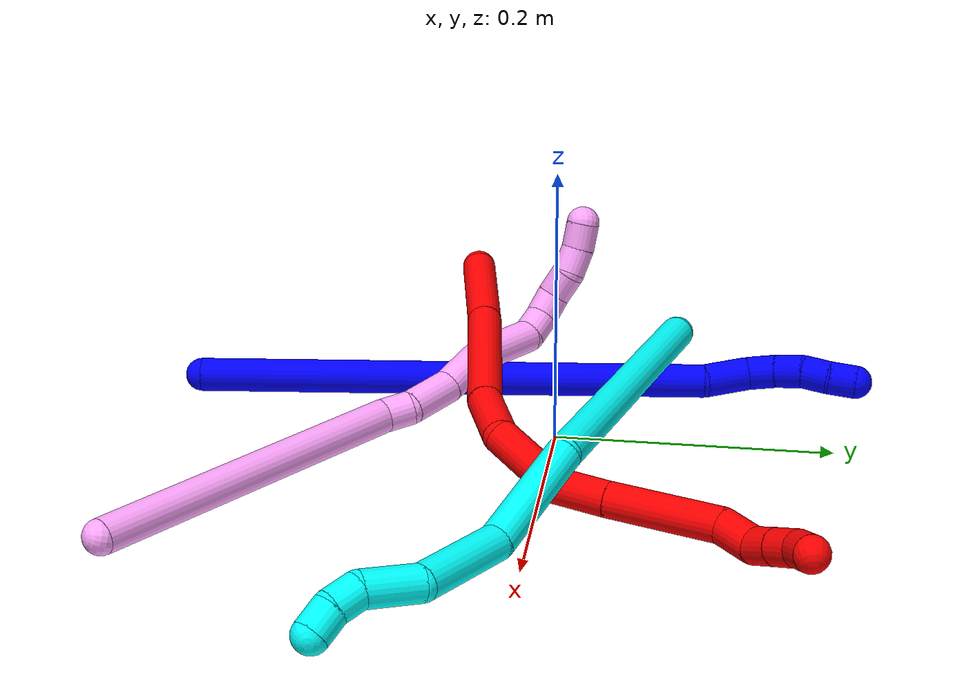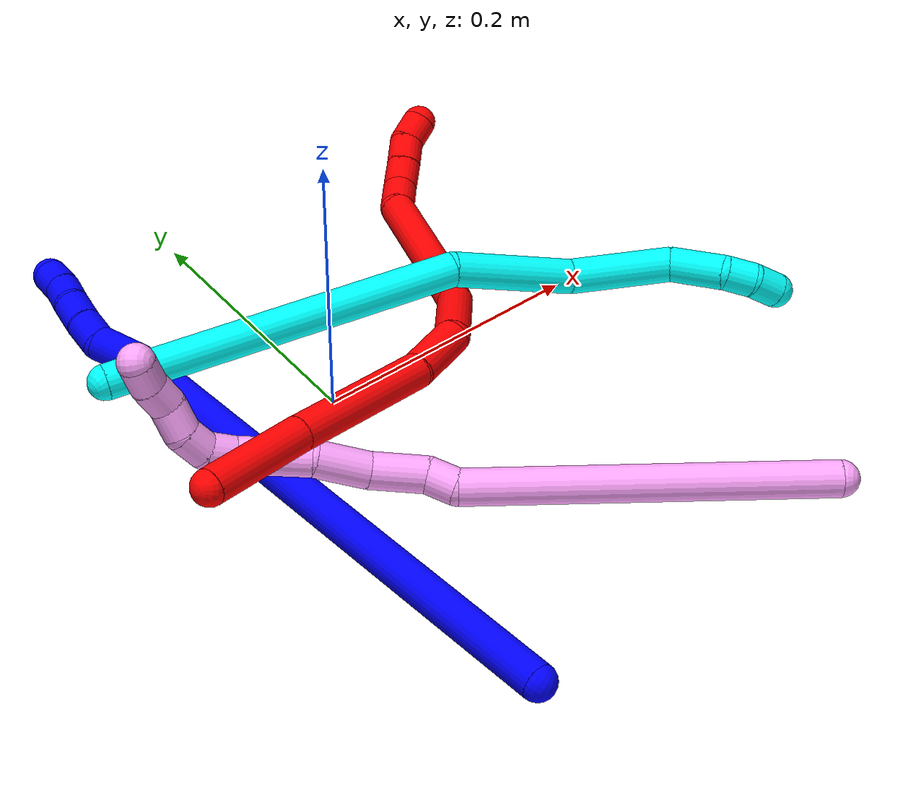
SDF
<sdf version="1.7">
 <world name="default">
  <plugin name="TubeGeneratorPlugin" filename="libtube_generator_plugin.so"/>
  <model name="photoneo_s_sensor">
   <static>1</static>
   <pose>0 0 2 1.57079 1.57079 3.14159</pose>
   <link name="link">
    <inertial><mass>0.1</mass></inertial>
    <sensor name="sensor" type="depth">
     <update_rate>30</update_rate>
     <camera>
      <horizontal_fov>1.22</horizontal_fov>
      <image><width>1920</width><height>1200</height><format>B8G8R8</format></image>
      <clip><near>0.1</near><far>4</far></clip>
      <depth_camera><output>points</output></depth_camera>
     </camera>
     <plugin name="camera_plugin" filename="libgazebo_ros_depth_camera.so">
      <baseline>0.2</baseline>
      <alwaysOn>1</alwaysOn>
      <updateRate>0.0</updateRate>
      <cameraName>camera_ir</cameraName>
      <imageTopicName>/camera/color/image_raw</imageTopicName>
      <cameraInfoTopicName>/camera/color/camera_info</cameraInfoTopicName>
      <depthImageTopicName>/camera/depth/image_raw</depthImageTopicName>
      <depthImageCameraInfoTopicName>/camera/depth/camera_info</depthImageCameraInfoTopicName>
      <pointCloudTopicName>/camera/depth/points</pointCloudTopicName>
      <frameName>fr_optical</frameName>
      <pointCloudCutoff>0.1</pointCloudCutoff>
      <pointCloudCutoffMax>2.0</pointCloudCutoffMax>
      <distortionK1>0</distortionK1>
      <distortionK2>0</distortionK2>
      <distortionK3>0</distortionK3>
      <distortionT1>0</distortionT1>
      <distortionT2>0</distortionT2>
      <CxPrime>0</CxPrime>
      <Cx>0</Cx>
      <Cy>0</Cy>
      <focalLength>0</focalLength>
      <hackBaseline>0</hackBaseline>
     </plugin>
    </sensor>
   </link>
  </model>
  <gravity>0 0 -9.8</gravity>
  <magnetic_field>6e-06 2.3e-05 -4.2e-05</magnetic_field>
  <atmosphere type="adiabatic"/>
  <physics name="default_physics" default="0" type="ode">
   <max_step_size>0.003</max_step_size>
   <real_time_factor>1</real_time_factor>
   <real_time_update_rate>1000</real_time_update_rate>
   <max_contacts>10000</max_contacts>
   <ode>
    <solver>
     <type>quick</type>
     <iters>100</iters>
     <sor>1.3</sor>
     <use_dynamic_moi_rescaling>0</use_dynamic_moi_rescaling>
    </solver>
    <constraints>
     <contact_max_correcting_vel>0</contact_max_correcting_vel>
     <contact_surface_layer>0.001</contact_surface_layer>
     <cfm>0</cfm>
     <erp>0.2</erp>
    </constraints>
   </ode>
  </physics>
  <scene><ambient>0.4 0.4 0.4 1</ambient><background>0.7 0.7 0.7 1</background><shadows>0</shadows></scene>
  <audio><device>default</device></audio>
  <spherical_coordinates>
   <surface_model>EARTH_WGS84</surface_model>
   <latitude_deg>0</latitude_deg>
   <longitude_deg>0</longitude_deg>
   <elevation>0</elevation>
   <heading_deg>0</heading_deg>
  </spherical_coordinates>
  <model name="bin">
   <static>1</static>
   <link name="bottom">
    <collision name="collision-bottom">
     <pose>0 0 -0.01 0 -0 0</pose>
     <geometry><box><size>0.8 0.6 0.02</size></box></geometry>
     <surface>
      <friction><ode><mu>100</mu><mu2>100</mu2></ode></friction>
      <contact><collide_bitmask>65535</collide_bitmask></contact>
     </surface>
    </collision>
   </link>
   <link name="west_wall">
    <collision name="collision-west_wall">
     <pose>-0.41 0 0.1 0 -0 0</pose>
     <geometry><box><size>0.02 0.6 0.2</size></box></geometry>
     <surface>
      <friction><ode><mu>100</mu><mu2>100</mu2></ode></friction>
      <contact><collide_bitmask>65535</collide_bitmask></contact>
     </surface>
    </collision>
   </link>
   <link name="east_wall">
    <collision name="collision-east_wall">
     <pose>0.41 0 0.1 0 -0 0</pose>
     <geometry><box><size>0.02 0.6 0.2</size></box></geometry>
     <surface>
      <friction><ode><mu>100</mu><mu2>100</mu2></ode></friction>
      <contact><collide_bitmask>65535</collide_bitmask></contact>
     </surface>
    </collision>
   </link>
   <link name="south_wall">
    <collision name="collision-south_wall">
     <pose>0 -0.31 0.1 0 -0 0</pose>
     <geometry><box><size>0.8 0.02 0.2</size></box></geometry>
     <surface>
      <friction><ode><mu>100</mu><mu2>100</mu2></ode></friction>
      <contact><collide_bitmask>65535</collide_bitmask></contact>
     </surface>
    </collision>
   </link>
   <link name="north_wall">
    <collision name="collision-north_wall">
     <pose>0 0.31 0.1 0 -0 0</pose>
     <geometry><box><size>0.8 0.02 0.2</size></box></geometry>
     <surface>
      <friction><ode><mu>100</mu><mu2>100</mu2></ode></friction>
      <contact><collide_bitmask>65535</collide_bitmask></contact>
     </surface>
    </collision>
   </link>
  </model>
  <model name="1">
   <static>0</static>
   <link name="1">
    <collision name="collision-cylinder-e_1_1_4">
     <pose>-0.006654 0.191124 -0.007701 -1.61107 -0.034774 0.036203</pose>
     <geometry><cylinder><radius>0.0125</radius><length>0.38279</length></cylinder></geometry>
     <surface>
      <friction><ode><mu>1.16</mu><mu2>1.16</mu2><slip1>0</slip1><slip2>0</slip2></ode></friction>
      <contact><ode><kp>1e+06</kp><kd>1</kd><max_vel>0</max_vel><min_depth>0.001</min_depth></ode></contact>
     </surface>
    </collision>
    <visual name="visual-cylinder-e_1_1_4">
     <pose>-0.006654 0.191124 -0.007701 -1.61107 -0.034774 0.036203</pose>
     <geometry><cylinder><radius>0.0125</radius><length>0.38279</length></cylinder></geometry>
     <material><ambient>0 0 1 1</ambient></material>
    </visual>
    <collision name="collision-cylinder-e_2_4_5">
     <pose>-0.01793 0.398648 -0.019266 -1.80217 -0.267713 0.336923</pose>
     <geometry><cylinder><radius>0.0125</radius><length>0.034941</length></cylinder></geometry>
     <surface>
      <friction><ode><mu>1.16</mu><mu2>1.16</mu2><slip1>0</slip1><slip2>0</slip2></ode></friction>
      <contact><ode><kp>1e+06</kp><kd>1</kd><max_vel>0</max_vel><min_depth>0.001</min_depth></ode></contact>
     </surface>
    </collision>
    <visual name="visual-cylinder-e_2_4_5">
     <pose>-0.01793 0.398648 -0.019266 -1.80217 -0.267713 0.336923</pose>
     <geometry><cylinder><radius>0.0125</radius><length>0.034941</length></cylinder></geometry>
     <material><ambient>0 0 1 1</ambient></material>
    </visual>
    <collision name="collision-cylinder-e_3_5_6">
     <pose>-0.023397 0.425462 -0.021517 -1.4171 -0.0801 0.068656</pose>
     <geometry><cylinder><radius>0.0125</radius><length>0.021145</length></cylinder></geometry>
     <surface>
      <friction><ode><mu>1.16</mu><mu2>1.16</mu2><slip1>0</slip1><slip2>0</slip2></ode></friction>
      <contact><ode><kp>1e+06</kp><kd>1</kd><max_vel>0</max_vel><min_depth>0.001</min_depth></ode></contact>
     </surface>
    </collision>
    <visual name="visual-cylinder-e_3_5_6">
     <pose>-0.023397 0.425462 -0.021517 -1.4171 -0.0801 0.068656</pose>
     <geometry><cylinder><radius>0.0125</radius><length>0.021145</length></cylinder></geometry>
     <material><ambient>0 0 1 1</ambient></material>
    </visual>
    <collision name="collision-cylinder-e_4_6_7">
     <pose>-0.023974 0.446123 -0.017835 -1.37166 0.025711 -0.021041</pose>
     <geometry><cylinder><radius>0.0125</radius><length>0.020914</length></cylinder></geometry>
     <surface>
      <friction><ode><mu>1.16</mu><mu2>1.16</mu2><slip1>0</slip1><slip2>0</slip2></ode></friction>
      <contact><ode><kp>1e+06</kp><kd>1</kd><max_vel>0</max_vel><min_depth>0.001</min_depth></ode></contact>
     </surface>
    </collision>
    <visual name="visual-cylinder-e_4_6_7">
     <pose>-0.023974 0.446123 -0.017835 -1.37166 0.025711 -0.021041</pose>
     <geometry><cylinder><radius>0.0125</radius><length>0.020914</length></cylinder></geometry>
     <material><ambient>0 0 1 1</ambient></material>
    </visual>
    <collision name="collision-cylinder-e_5_7_8">
     <pose>-0.021231 0.466013 -0.014221 -1.41176 0.248134 -0.211803</pose>
     <geometry><cylinder><radius>0.0125</radius><length>0.02015</length></cylinder></geometry>
     <surface>
      <friction><ode><mu>1.16</mu><mu2>1.16</mu2><slip1>0</slip1><slip2>0</slip2></ode></friction>
      <contact><ode><kp>1e+06</kp><kd>1</kd><max_vel>0</max_vel><min_depth>0.001</min_depth></ode></contact>
     </surface>
    </collision>
    <visual name="visual-cylinder-e_5_7_8">
     <pose>-0.021231 0.466013 -0.014221 -1.41176 0.248134 -0.211803</pose>
     <geometry><cylinder><radius>0.0125</radius><length>0.02015</length></cylinder></geometry>
     <material><ambient>0 0 1 1</ambient></material>
    </visual>
    <collision name="collision-cylinder-e_6_8_2">
     <pose>-0.017341 0.485582 -0.012416 -1.5448 0.141622 -0.137999</pose>
     <geometry><cylinder><radius>0.0125</radius><length>0.020059</length></cylinder></geometry>
     <surface>
      <friction><ode><mu>1.16</mu><mu2>1.16</mu2><slip1>0</slip1><slip2>0</slip2></ode></friction>
      <contact><ode><kp>1e+06</kp><kd>1</kd><max_vel>0</max_vel><min_depth>0.001</min_depth></ode></contact>
     </surface>
    </collision>
    <visual name="visual-cylinder-e_6_8_2">
     <pose>-0.017341 0.485582 -0.012416 -1.5448 0.141622 -0.137999</pose>
     <geometry><cylinder><radius>0.0125</radius><length>0.020059</length></cylinder></geometry>
     <material><ambient>0 0 1 1</ambient></material>
    </visual>
    <collision name="collision-sphere-2">
     <pose>-0.015925 0.495508 -0.012158 0 -0 0</pose>
     <geometry><sphere><radius>0.0125</radius></sphere></geometry>
     <surface>
      <friction><ode><mu>1.16</mu><mu2>1.16</mu2><slip1>0</slip1><slip2>0</slip2></ode></friction>
      <contact><ode><kp>1e+06</kp><kd>1</kd><max_vel>0</max_vel><min_depth>0.001</min_depth></ode></contact>
     </surface>
    </collision>
    <visual name="visual-sphere-2">
     <pose>-0.015925 0.495508 -0.012158 0 -0 0</pose>
     <geometry><sphere><radius>0.0125</radius></sphere></geometry>
     <material><ambient>0 0 1 1</ambient></material>
    </visual>
    <collision name="collision-sphere-4">
     <pose>-0.013308 0.382249 -0.015403 0 -0 0</pose>
     <geometry><sphere><radius>0.0125</radius></sphere></geometry>
     <surface>
      <friction><ode><mu>1.16</mu><mu2>1.16</mu2><slip1>0</slip1><slip2>0</slip2></ode></friction>
      <contact><ode><kp>1e+06</kp><kd>1</kd><max_vel>0</max_vel><min_depth>0.001</min_depth></ode></contact>
     </surface>
    </collision>
    <visual name="visual-sphere-4">
     <pose>-0.013308 0.382249 -0.015403 0 -0 0</pose>
     <geometry><sphere><radius>0.0125</radius></sphere></geometry>
     <material><ambient>0 0 1 1</ambient></material>
    </visual>
    <collision name="collision-sphere-1">
     <geometry><sphere><radius>0.0125</radius></sphere></geometry>
     <surface>
      <friction><ode><mu>1.16</mu><mu2>1.16</mu2><slip1>0</slip1><slip2>0</slip2></ode></friction>
      <contact><ode><kp>1e+06</kp><kd>1</kd><max_vel>0</max_vel><min_depth>0.001</min_depth></ode></contact>
     </surface>
    </collision>
    <visual name="visual-sphere-1">
     <geometry><sphere><radius>0.0125</radius></sphere></geometry>
     <material><ambient>0 0 1 1</ambient></material>
    </visual>
    <collision name="collision-sphere-8">
     <pose>-0.018757 0.475657 -0.012674 0 -0 0</pose>
     <geometry><sphere><radius>0.0125</radius></sphere></geometry>
     <surface>
      <friction><ode><mu>1.16</mu><mu2>1.16</mu2><slip1>0</slip1><slip2>0</slip2></ode></friction>
      <contact><ode><kp>1e+06</kp><kd>1</kd><max_vel>0</max_vel><min_depth>0.001</min_depth></ode></contact>
     </surface>
    </collision>
    <visual name="visual-sphere-8">
     <pose>-0.018757 0.475657 -0.012674 0 -0 0</pose>
     <geometry><sphere><radius>0.0125</radius></sphere></geometry>
     <material><ambient>0 0 1 1</ambient></material>
    </visual>
    <collision name="collision-sphere-5">
     <pose>-0.022551 0.415047 -0.02313 0 -0 0</pose>
     <geometry><sphere><radius>0.0125</radius></sphere></geometry>
     <surface>
      <friction><ode><mu>1.16</mu><mu2>1.16</mu2><slip1>0</slip1><slip2>0</slip2></ode></friction>
      <contact><ode><kp>1e+06</kp><kd>1</kd><max_vel>0</max_vel><min_depth>0.001</min_depth></ode></contact>
     </surface>
    </collision>
    <visual name="visual-sphere-5">
     <pose>-0.022551 0.415047 -0.02313 0 -0 0</pose>
     <geometry><sphere><radius>0.0125</radius></sphere></geometry>
     <material><ambient>0 0 1 1</ambient></material>
    </visual>
    <collision name="collision-sphere-6">
     <pose>-0.024243 0.435876 -0.019903 0 -0 0</pose>
     <geometry><sphere><radius>0.0125</radius></sphere></geometry>
     <surface>
      <friction><ode><mu>1.16</mu><mu2>1.16</mu2><slip1>0</slip1><slip2>0</slip2></ode></friction>
      <contact><ode><kp>1e+06</kp><kd>1</kd><max_vel>0</max_vel><min_depth>0.001</min_depth></ode></contact>
     </surface>
    </collision>
    <visual name="visual-sphere-6">
     <pose>-0.024243 0.435876 -0.019903 0 -0 0</pose>
     <geometry><sphere><radius>0.0125</radius></sphere></geometry>
     <material><ambient>0 0 1 1</ambient></material>
    </visual>
    <collision name="collision-sphere-7">
     <pose>-0.023706 0.45637 -0.015767 0 -0 0</pose>
     <geometry><sphere><radius>0.0125</radius></sphere></geometry>
     <surface>
      <friction><ode><mu>1.16</mu><mu2>1.16</mu2><slip1>0</slip1><slip2>0</slip2></ode></friction>
      <contact><ode><kp>1e+06</kp><kd>1</kd><max_vel>0</max_vel><min_depth>0.001</min_depth></ode></contact>
     </surface>
    </collision>
    <visual name="visual-sphere-7">
     <pose>-0.023706 0.45637 -0.015767 0 -0 0</pose>
     <geometry><sphere><radius>0.0125</radius></sphere></geometry>
     <material><ambient>0 0 1 1</ambient></material>
    </visual>
    <inertial>
     <pose>-0.009891 0.249094 -0.00997 0 -0 0</pose>
     <mass>0.5</mass>
     <inertia>
      <ixx>0.004863</ixx>
      <ixy>0</ixy>
      <ixz>0</ixz>
      <iyy>2.7e-05</iyy>
      <iyz>0</iyz>
      <izz>-0.00453</izz>
     </inertia>
    </inertial>
   </link>
   <pose>-0.049936 -0.277156 0.011496 -0.003414 0.898083 0.045321</pose>
  </model>
  <model name="2">
   <static>0</static>
   <link name="2">
    <collision name="collision-cylinder-e_1_1_4">
     <pose>0.009356 -0.006821 -0.037958 2.96378 0.238 1.86032</pose>
     <geometry><cylinder><radius>0.0125</radius><length>0.079369</length></cylinder></geometry>
     <surface>
      <friction><ode><mu>1.16</mu><mu2>1.16</mu2><slip1>0</slip1><slip2>0</slip2></ode></friction>
      <contact><ode><kp>1e+06</kp><kd>1</kd><max_vel>0</max_vel><min_depth>0.001</min_depth></ode></contact>
     </surface>
    </collision>
    <visual name="visual-cylinder-e_1_1_4">
     <pose>0.009356 -0.006821 -0.037958 2.96378 0.238 1.86032</pose>
     <geometry><cylinder><radius>0.0125</radius><length>0.079369</length></cylinder></geometry>
     <material><ambient>1 0 0 1</ambient></material>
    </visual>
    <collision name="collision-cylinder-e_2_4_5">
     <pose>0.029927 -0.025313 -0.12784 2.92051 0.207698 1.50791</pose>
     <geometry><cylinder><radius>0.0125</radius><length>0.108777</length></cylinder></geometry>
     <surface>
      <friction><ode><mu>1.16</mu><mu2>1.16</mu2><slip1>0</slip1><slip2>0</slip2></ode></friction>
      <contact><ode><kp>1e+06</kp><kd>1</kd><max_vel>0</max_vel><min_depth>0.001</min_depth></ode></contact>
     </surface>
    </collision>
    <visual name="visual-cylinder-e_2_4_5">
     <pose>0.029927 -0.025313 -0.12784 2.92051 0.207698 1.50791</pose>
     <geometry><cylinder><radius>0.0125</radius><length>0.108777</length></cylinder></geometry>
     <material><ambient>1 0 0 1</ambient></material>
    </visual>
    <collision name="collision-cylinder-e_3_5_6">
     <pose>0.049999 -0.038679 -0.201159 3.06248 0.391377 2.74747</pose>
     <geometry><cylinder><radius>0.0125</radius><length>0.046434</length></cylinder></geometry>
     <surface>
      <friction><ode><mu>1.16</mu><mu2>1.16</mu2><slip1>0</slip1><slip2>0</slip2></ode></friction>
      <contact><ode><kp>1e+06</kp><kd>1</kd><max_vel>0</max_vel><min_depth>0.001</min_depth></ode></contact>
     </surface>
    </collision>
    <visual name="visual-cylinder-e_3_5_6">
     <pose>0.049999 -0.038679 -0.201159 3.06248 0.391377 2.74747</pose>
     <geometry><cylinder><radius>0.0125</radius><length>0.046434</length></cylinder></geometry>
     <material><ambient>1 0 0 1</ambient></material>
    </visual>
    <collision name="collision-cylinder-e_4_6_7">
     <pose>0.072695 -0.028587 -0.245344 -2.66425 0.494649 -1.60785</pose>
     <geometry><cylinder><radius>0.0125</radius><length>0.058307</length></cylinder></geometry>
     <surface>
      <friction><ode><mu>1.16</mu><mu2>1.16</mu2><slip1>0</slip1><slip2>0</slip2></ode></friction>
      <contact><ode><kp>1e+06</kp><kd>1</kd><max_vel>0</max_vel><min_depth>0.001</min_depth></ode></contact>
     </surface>
    </collision>
    <visual name="visual-cylinder-e_4_6_7">
     <pose>0.072695 -0.028587 -0.245344 -2.66425 0.494649 -1.60785</pose>
     <geometry><cylinder><radius>0.0125</radius><length>0.058307</length></cylinder></geometry>
     <material><ambient>1 0 0 1</ambient></material>
    </visual>
    <collision name="collision-cylinder-e_5_7_8">
     <pose>0.100408 -0.006758 -0.27643 -2.26128 0.81692 -1.48638</pose>
     <geometry><cylinder><radius>0.0125</radius><length>0.038057</length></cylinder></geometry>
     <surface>
      <friction><ode><mu>1.16</mu><mu2>1.16</mu2><slip1>0</slip1><slip2>0</slip2></ode></friction>
      <contact><ode><kp>1e+06</kp><kd>1</kd><max_vel>0</max_vel><min_depth>0.001</min_depth></ode></contact>
     </surface>
    </collision>
    <visual name="visual-cylinder-e_5_7_8">
     <pose>0.100408 -0.006758 -0.27643 -2.26128 0.81692 -1.48638</pose>
     <geometry><cylinder><radius>0.0125</radius><length>0.038057</length></cylinder></geometry>
     <material><ambient>1 0 0 1</ambient></material>
    </visual>
    <collision name="collision-cylinder-e_6_8_9">
     <pose>0.143661 0.024845 -0.300341 -2.19758 0.834614 -1.43024</pose>
     <geometry><cylinder><radius>0.0125</radius><length>0.079296</length></cylinder></geometry>
     <surface>
      <friction><ode><mu>1.16</mu><mu2>1.16</mu2><slip1>0</slip1><slip2>0</slip2></ode></friction>
      <contact><ode><kp>1e+06</kp><kd>1</kd><max_vel>0</max_vel><min_depth>0.001</min_depth></ode></contact>
     </surface>
    </collision>
    <visual name="visual-cylinder-e_6_8_9">
     <pose>0.143661 0.024845 -0.300341 -2.19758 0.834614 -1.43024</pose>
     <geometry><cylinder><radius>0.0125</radius><length>0.079296</length></cylinder></geometry>
     <material><ambient>1 0 0 1</ambient></material>
    </visual>
    <collision name="collision-cylinder-e_7_9_10">
     <pose>0.181541 0.05062 -0.326252 -2.75319 0.652419 -2.08834</pose>
     <geometry><cylinder><radius>0.0125</radius><length>0.027999</length></cylinder></geometry>
     <surface>
      <friction><ode><mu>1.16</mu><mu2>1.16</mu2><slip1>0</slip1><slip2>0</slip2></ode></friction>
      <contact><ode><kp>1e+06</kp><kd>1</kd><max_vel>0</max_vel><min_depth>0.001</min_depth></ode></contact>
     </surface>
    </collision>
    <visual name="visual-cylinder-e_7_9_10">
     <pose>0.181541 0.05062 -0.326252 -2.75319 0.652419 -2.08834</pose>
     <geometry><cylinder><radius>0.0125</radius><length>0.027999</length></cylinder></geometry>
     <material><ambient>1 0 0 1</ambient></material>
    </visual>
    <collision name="collision-cylinder-e_8_10_11">
     <pose>0.199118 0.054048 -0.342058 3.00022 1.0208 2.89</pose>
     <geometry><cylinder><radius>0.0125</radius><length>0.021297</length></cylinder></geometry>
     <surface>
      <friction><ode><mu>1.16</mu><mu2>1.16</mu2><slip1>0</slip1><slip2>0</slip2></ode></friction>
      <contact><ode><kp>1e+06</kp><kd>1</kd><max_vel>0</max_vel><min_depth>0.001</min_depth></ode></contact>
     </surface>
    </collision>
    <visual name="visual-cylinder-e_8_10_11">
     <pose>0.199118 0.054048 -0.342058 3.00022 1.0208 2.89</pose>
     <geometry><cylinder><radius>0.0125</radius><length>0.021297</length></cylinder></geometry>
     <material><ambient>1 0 0 1</ambient></material>
    </visual>
    <collision name="collision-cylinder-e_9_11_12">
     <pose>0.216917 0.052854 -0.352835 3.06394 1.02611 3.00391</pose>
     <geometry><cylinder><radius>0.0125</radius><length>0.020391</length></cylinder></geometry>
     <surface>
      <friction><ode><mu>1.16</mu><mu2>1.16</mu2><slip1>0</slip1><slip2>0</slip2></ode></friction>
      <contact><ode><kp>1e+06</kp><kd>1</kd><max_vel>0</max_vel><min_depth>0.001</min_depth></ode></contact>
     </surface>
    </collision>
    <visual name="visual-cylinder-e_9_11_12">
     <pose>0.216917 0.052854 -0.352835 3.06394 1.02611 3.00391</pose>
     <geometry><cylinder><radius>0.0125</radius><length>0.020391</length></cylinder></geometry>
     <material><ambient>1 0 0 1</ambient></material>
    </visual>
    <collision name="collision-cylinder-e_10_12_2">
     <pose>0.232219 0.049211 -0.364953 2.7007 0.71529 2.06132</pose>
     <geometry><cylinder><radius>0.0125</radius><length>0.020072</length></cylinder></geometry>
     <surface>
      <friction><ode><mu>1.16</mu><mu2>1.16</mu2><slip1>0</slip1><slip2>0</slip2></ode></friction>
      <contact><ode><kp>1e+06</kp><kd>1</kd><max_vel>0</max_vel><min_depth>0.001</min_depth></ode></contact>
     </surface>
    </collision>
    <visual name="visual-cylinder-e_10_12_2">
     <pose>0.232219 0.049211 -0.364953 2.7007 0.71529 2.06132</pose>
     <geometry><cylinder><radius>0.0125</radius><length>0.020072</length></cylinder></geometry>
     <material><ambient>1 0 0 1</ambient></material>
    </visual>
    <collision name="collision-sphere-2">
     <pose>0.238801 0.045978 -0.371805 0 -0 0</pose>
     <geometry><sphere><radius>0.0125</radius></sphere></geometry>
     <surface>
      <friction><ode><mu>1.16</mu><mu2>1.16</mu2><slip1>0</slip1><slip2>0</slip2></ode></friction>
      <contact><ode><kp>1e+06</kp><kd>1</kd><max_vel>0</max_vel><min_depth>0.001</min_depth></ode></contact>
     </surface>
    </collision>
    <visual name="visual-sphere-2">
     <pose>0.238801 0.045978 -0.371805 0 -0 0</pose>
     <geometry><sphere><radius>0.0125</radius></sphere></geometry>
     <material><ambient>1 0 0 1</ambient></material>
    </visual>
    <collision name="collision-sphere-12">
     <pose>0.225637 0.052445 -0.358102 0 -0 0</pose>
     <geometry><sphere><radius>0.0125</radius></sphere></geometry>
     <surface>
      <friction><ode><mu>1.16</mu><mu2>1.16</mu2><slip1>0</slip1><slip2>0</slip2></ode></friction>
      <contact><ode><kp>1e+06</kp><kd>1</kd><max_vel>0</max_vel><min_depth>0.001</min_depth></ode></contact>
     </surface>
    </collision>
    <visual name="visual-sphere-12">
     <pose>0.225637 0.052445 -0.358102 0 -0 0</pose>
     <geometry><sphere><radius>0.0125</radius></sphere></geometry>
     <material><ambient>1 0 0 1</ambient></material>
    </visual>
    <collision name="collision-sphere-11">
     <pose>0.208197 0.053264 -0.347568 0 -0 0</pose>
     <geometry><sphere><radius>0.0125</radius></sphere></geometry>
     <surface>
      <friction><ode><mu>1.16</mu><mu2>1.16</mu2><slip1>0</slip1><slip2>0</slip2></ode></friction>
      <contact><ode><kp>1e+06</kp><kd>1</kd><max_vel>0</max_vel><min_depth>0.001</min_depth></ode></contact>
     </surface>
    </collision>
    <visual name="visual-sphere-11">
     <pose>0.208197 0.053264 -0.347568 0 -0 0</pose>
     <geometry><sphere><radius>0.0125</radius></sphere></geometry>
     <material><ambient>1 0 0 1</ambient></material>
    </visual>
    <collision name="collision-sphere-10">
     <pose>0.19004 0.054833 -0.336547 0 -0 0</pose>
     <geometry><sphere><radius>0.0125</radius></sphere></geometry>
     <surface>
      <friction><ode><mu>1.16</mu><mu2>1.16</mu2><slip1>0</slip1><slip2>0</slip2></ode></friction>
      <contact><ode><kp>1e+06</kp><kd>1</kd><max_vel>0</max_vel><min_depth>0.001</min_depth></ode></contact>
     </surface>
    </collision>
    <visual name="visual-sphere-10">
     <pose>0.19004 0.054833 -0.336547 0 -0 0</pose>
     <geometry><sphere><radius>0.0125</radius></sphere></geometry>
     <material><ambient>1 0 0 1</ambient></material>
    </visual>
    <collision name="collision-sphere-9">
     <pose>0.173042 0.046407 -0.315956 0 -0 0</pose>
     <geometry><sphere><radius>0.0125</radius></sphere></geometry>
     <surface>
      <friction><ode><mu>1.16</mu><mu2>1.16</mu2><slip1>0</slip1><slip2>0</slip2></ode></friction>
      <contact><ode><kp>1e+06</kp><kd>1</kd><max_vel>0</max_vel><min_depth>0.001</min_depth></ode></contact>
     </surface>
    </collision>
    <visual name="visual-sphere-9">
     <pose>0.173042 0.046407 -0.315956 0 -0 0</pose>
     <geometry><sphere><radius>0.0125</radius></sphere></geometry>
     <material><ambient>1 0 0 1</ambient></material>
    </visual>
    <collision name="collision-sphere-4">
     <pose>0.018712 -0.013643 -0.075916 0 -0 0</pose>
     <geometry><sphere><radius>0.0125</radius></sphere></geometry>
     <surface>
      <friction><ode><mu>1.16</mu><mu2>1.16</mu2><slip1>0</slip1><slip2>0</slip2></ode></friction>
      <contact><ode><kp>1e+06</kp><kd>1</kd><max_vel>0</max_vel><min_depth>0.001</min_depth></ode></contact>
     </surface>
    </collision>
    <visual name="visual-sphere-4">
     <pose>0.018712 -0.013643 -0.075916 0 -0 0</pose>
     <geometry><sphere><radius>0.0125</radius></sphere></geometry>
     <material><ambient>1 0 0 1</ambient></material>
    </visual>
    <collision name="collision-sphere-1">
     <geometry><sphere><radius>0.0125</radius></sphere></geometry>
     <surface>
      <friction><ode><mu>1.16</mu><mu2>1.16</mu2><slip1>0</slip1><slip2>0</slip2></ode></friction>
      <contact><ode><kp>1e+06</kp><kd>1</kd><max_vel>0</max_vel><min_depth>0.001</min_depth></ode></contact>
     </surface>
    </collision>
    <visual name="visual-sphere-1">
     <geometry><sphere><radius>0.0125</radius></sphere></geometry>
     <material><ambient>1 0 0 1</ambient></material>
    </visual>
    <collision name="collision-sphere-8">
     <pose>0.114281 0.003283 -0.284726 0 -0 0</pose>
     <geometry><sphere><radius>0.0125</radius></sphere></geometry>
     <surface>
      <friction><ode><mu>1.16</mu><mu2>1.16</mu2><slip1>0</slip1><slip2>0</slip2></ode></friction>
      <contact><ode><kp>1e+06</kp><kd>1</kd><max_vel>0</max_vel><min_depth>0.001</min_depth></ode></contact>
     </surface>
    </collision>
    <visual name="visual-sphere-8">
     <pose>0.114281 0.003283 -0.284726 0 -0 0</pose>
     <geometry><sphere><radius>0.0125</radius></sphere></geometry>
     <material><ambient>1 0 0 1</ambient></material>
    </visual>
    <collision name="collision-sphere-5">
     <pose>0.041143 -0.036983 -0.179764 0 -0 0</pose>
     <geometry><sphere><radius>0.0125</radius></sphere></geometry>
     <surface>
      <friction><ode><mu>1.16</mu><mu2>1.16</mu2><slip1>0</slip1><slip2>0</slip2></ode></friction>
      <contact><ode><kp>1e+06</kp><kd>1</kd><max_vel>0</max_vel><min_depth>0.001</min_depth></ode></contact>
     </surface>
    </collision>
    <visual name="visual-sphere-5">
     <pose>0.041143 -0.036983 -0.179764 0 -0 0</pose>
     <geometry><sphere><radius>0.0125</radius></sphere></geometry>
     <material><ambient>1 0 0 1</ambient></material>
    </visual>
    <collision name="collision-sphere-6">
     <pose>0.058856 -0.040375 -0.222553 0 -0 0</pose>
     <geometry><sphere><radius>0.0125</radius></sphere></geometry>
     <surface>
      <friction><ode><mu>1.16</mu><mu2>1.16</mu2><slip1>0</slip1><slip2>0</slip2></ode></friction>
      <contact><ode><kp>1e+06</kp><kd>1</kd><max_vel>0</max_vel><min_depth>0.001</min_depth></ode></contact>
     </surface>
    </collision>
    <visual name="visual-sphere-6">
     <pose>0.058856 -0.040375 -0.222553 0 -0 0</pose>
     <geometry><sphere><radius>0.0125</radius></sphere></geometry>
     <material><ambient>1 0 0 1</ambient></material>
    </visual>
    <collision name="collision-sphere-7">
     <pose>0.086535 -0.016799 -0.268135 0 -0 0</pose>
     <geometry><sphere><radius>0.0125</radius></sphere></geometry>
     <surface>
      <friction><ode><mu>1.16</mu><mu2>1.16</mu2><slip1>0</slip1><slip2>0</slip2></ode></friction>
      <contact><ode><kp>1e+06</kp><kd>1</kd><max_vel>0</max_vel><min_depth>0.001</min_depth></ode></contact>
     </surface>
    </collision>
    <visual name="visual-sphere-7">
     <pose>0.086535 -0.016799 -0.268135 0 -0 0</pose>
     <geometry><sphere><radius>0.0125</radius></sphere></geometry>
     <material><ambient>1 0 0 1</ambient></material>
    </visual>
    <inertial>
     <pose>0.088359 -0.000822 -0.211681 0 -0 0</pose>
     <mass>0.5</mass>
     <inertia>
      <ixx>0.000108</ixx>
      <ixy>0</ixy>
      <ixz>0</ixz>
      <iyy>0.000165</iyy>
      <iyz>0</iyz>
      <izz>-0.000121</izz>
     </inertia>
    </inertial>
   </link>
   <pose>-0.145501 -0.077173 0.073661 -0.94355 -0.704737 1.29195</pose>
  </model>
  <model name="3">
   <static>0</static>
   <link name="3">
    <collision name="collision-cylinder-e_1_1_4">
     <pose>0.024225 -0.033786 0.120352 0.273685 0.191423 0.026439</pose>
     <geometry><cylinder><radius>0.0125</radius><length>0.25466</length></cylinder></geometry>
     <surface>
      <friction><ode><mu>1.16</mu><mu2>1.16</mu2><slip1>0</slip1><slip2>0</slip2></ode></friction>
      <contact><ode><kp>1e+06</kp><kd>1</kd><max_vel>0</max_vel><min_depth>0.001</min_depth></ode></contact>
     </surface>
    </collision>
    <visual name="visual-cylinder-e_1_1_4">
     <pose>0.024225 -0.033786 0.120352 0.273685 0.191423 0.026439</pose>
     <geometry><cylinder><radius>0.0125</radius><length>0.25466</length></cylinder></geometry>
     <material><ambient>0.003922 1 0.996078 1</ambient></material>
    </visual>
    <collision name="collision-cylinder-e_2_4_5">
     <pose>0.07251 -0.077717 0.277872 0.266451 0.558217 0.076779</pose>
     <geometry><cylinder><radius>0.0125</radius><length>0.090846</length></cylinder></geometry>
     <surface>
      <friction><ode><mu>1.16</mu><mu2>1.16</mu2><slip1>0</slip1><slip2>0</slip2></ode></friction>
      <contact><ode><kp>1e+06</kp><kd>1</kd><max_vel>0</max_vel><min_depth>0.001</min_depth></ode></contact>
     </surface>
    </collision>
    <visual name="visual-cylinder-e_2_4_5">
     <pose>0.07251 -0.077717 0.277872 0.266451 0.558217 0.076779</pose>
     <geometry><cylinder><radius>0.0125</radius><length>0.090846</length></cylinder></geometry>
     <material><ambient>0.003922 1 0.996078 1</ambient></material>
    </visual>
    <collision name="collision-cylinder-e_3_5_6">
     <pose>0.107478 -0.105856 0.344915 0.542122 0.303136 0.084842</pose>
     <geometry><cylinder><radius>0.0125</radius><length>0.073084</length></cylinder></geometry>
     <surface>
      <friction><ode><mu>1.16</mu><mu2>1.16</mu2><slip1>0</slip1><slip2>0</slip2></ode></friction>
      <contact><ode><kp>1e+06</kp><kd>1</kd><max_vel>0</max_vel><min_depth>0.001</min_depth></ode></contact>
     </surface>
    </collision>
    <visual name="visual-cylinder-e_3_5_6">
     <pose>0.107478 -0.105856 0.344915 0.542122 0.303136 0.084842</pose>
     <geometry><cylinder><radius>0.0125</radius><length>0.073084</length></cylinder></geometry>
     <material><ambient>0.003922 1 0.996078 1</ambient></material>
    </visual>
    <collision name="collision-cylinder-e_4_6_7">
     <pose>0.12571 -0.140351 0.38369 1.07616 0.37242 0.223933</pose>
     <geometry><cylinder><radius>0.0125</radius><length>0.040254</length></cylinder></geometry>
     <surface>
      <friction><ode><mu>1.16</mu><mu2>1.16</mu2><slip1>0</slip1><slip2>0</slip2></ode></friction>
      <contact><ode><kp>1e+06</kp><kd>1</kd><max_vel>0</max_vel><min_depth>0.001</min_depth></ode></contact>
     </surface>
    </collision>
    <visual name="visual-cylinder-e_4_6_7">
     <pose>0.12571 -0.140351 0.38369 1.07616 0.37242 0.223933</pose>
     <geometry><cylinder><radius>0.0125</radius><length>0.040254</length></cylinder></geometry>
     <material><ambient>0.003922 1 0.996078 1</ambient></material>
    </visual>
    <collision name="collision-cylinder-e_5_7_8">
     <pose>0.139469 -0.161892 0.399023 0.664577 0.667059 0.237995</pose>
     <geometry><cylinder><radius>0.0125</radius><length>0.020806</length></cylinder></geometry>
     <surface>
      <friction><ode><mu>1.16</mu><mu2>1.16</mu2><slip1>0</slip1><slip2>0</slip2></ode></friction>
      <contact><ode><kp>1e+06</kp><kd>1</kd><max_vel>0</max_vel><min_depth>0.001</min_depth></ode></contact>
     </surface>
    </collision>
    <visual name="visual-cylinder-e_5_7_8">
     <pose>0.139469 -0.161892 0.399023 0.664577 0.667059 0.237995</pose>
     <geometry><cylinder><radius>0.0125</radius><length>0.020806</length></cylinder></geometry>
     <material><ambient>0.003922 1 0.996078 1</ambient></material>
    </visual>
    <collision name="collision-cylinder-e_6_8_2">
     <pose>0.153625 -0.168864 0.411798 0.295729 0.861208 0.13663</pose>
     <geometry><cylinder><radius>0.0125</radius><length>0.02035</length></cylinder></geometry>
     <surface>
      <friction><ode><mu>1.16</mu><mu2>1.16</mu2><slip1>0</slip1><slip2>0</slip2></ode></friction>
      <contact><ode><kp>1e+06</kp><kd>1</kd><max_vel>0</max_vel><min_depth>0.001</min_depth></ode></contact>
     </surface>
    </collision>
    <visual name="visual-cylinder-e_6_8_2">
     <pose>0.153625 -0.168864 0.411798 0.295729 0.861208 0.13663</pose>
     <geometry><cylinder><radius>0.0125</radius><length>0.02035</length></cylinder></geometry>
     <material><ambient>0.003922 1 0.996078 1</ambient></material>
    </visual>
    <collision name="collision-sphere-2">
     <pose>0.161344 -0.170796 0.41814 0 -0 0</pose>
     <geometry><sphere><radius>0.0125</radius></sphere></geometry>
     <surface>
      <friction><ode><mu>1.16</mu><mu2>1.16</mu2><slip1>0</slip1><slip2>0</slip2></ode></friction>
      <contact><ode><kp>1e+06</kp><kd>1</kd><max_vel>0</max_vel><min_depth>0.001</min_depth></ode></contact>
     </surface>
    </collision>
    <visual name="visual-sphere-2">
     <pose>0.161344 -0.170796 0.41814 0 -0 0</pose>
     <geometry><sphere><radius>0.0125</radius></sphere></geometry>
     <material><ambient>0.003922 1 0.996078 1</ambient></material>
    </visual>
    <collision name="collision-sphere-4">
     <pose>0.048451 -0.067573 0.240703 0 -0 0</pose>
     <geometry><sphere><radius>0.0125</radius></sphere></geometry>
     <surface>
      <friction><ode><mu>1.16</mu><mu2>1.16</mu2><slip1>0</slip1><slip2>0</slip2></ode></friction>
      <contact><ode><kp>1e+06</kp><kd>1</kd><max_vel>0</max_vel><min_depth>0.001</min_depth></ode></contact>
     </surface>
    </collision>
    <visual name="visual-sphere-4">
     <pose>0.048451 -0.067573 0.240703 0 -0 0</pose>
     <geometry><sphere><radius>0.0125</radius></sphere></geometry>
     <material><ambient>0.003922 1 0.996078 1</ambient></material>
    </visual>
    <collision name="collision-sphere-1">
     <geometry><sphere><radius>0.0125</radius></sphere></geometry>
     <surface>
      <friction><ode><mu>1.16</mu><mu2>1.16</mu2><slip1>0</slip1><slip2>0</slip2></ode></friction>
      <contact><ode><kp>1e+06</kp><kd>1</kd><max_vel>0</max_vel><min_depth>0.001</min_depth></ode></contact>
     </surface>
    </collision>
    <visual name="visual-sphere-1">
     <geometry><sphere><radius>0.0125</radius></sphere></geometry>
     <material><ambient>0.003922 1 0.996078 1</ambient></material>
    </visual>
    <collision name="collision-sphere-8">
     <pose>0.145906 -0.166932 0.405457 0 -0 0</pose>
     <geometry><sphere><radius>0.0125</radius></sphere></geometry>
     <surface>
      <friction><ode><mu>1.16</mu><mu2>1.16</mu2><slip1>0</slip1><slip2>0</slip2></ode></friction>
      <contact><ode><kp>1e+06</kp><kd>1</kd><max_vel>0</max_vel><min_depth>0.001</min_depth></ode></contact>
     </surface>
    </collision>
    <visual name="visual-sphere-8">
     <pose>0.145906 -0.166932 0.405457 0 -0 0</pose>
     <geometry><sphere><radius>0.0125</radius></sphere></geometry>
     <material><ambient>0.003922 1 0.996078 1</ambient></material>
    </visual>
    <collision name="collision-sphere-5">
     <pose>0.096569 -0.087862 0.31504 0 -0 0</pose>
     <geometry><sphere><radius>0.0125</radius></sphere></geometry>
     <surface>
      <friction><ode><mu>1.16</mu><mu2>1.16</mu2><slip1>0</slip1><slip2>0</slip2></ode></friction>
      <contact><ode><kp>1e+06</kp><kd>1</kd><max_vel>0</max_vel><min_depth>0.001</min_depth></ode></contact>
     </surface>
    </collision>
    <visual name="visual-sphere-5">
     <pose>0.096569 -0.087862 0.31504 0 -0 0</pose>
     <geometry><sphere><radius>0.0125</radius></sphere></geometry>
     <material><ambient>0.003922 1 0.996078 1</ambient></material>
    </visual>
    <collision name="collision-sphere-6">
     <pose>0.118386 -0.123851 0.374791 0 -0 0</pose>
     <geometry><sphere><radius>0.0125</radius></sphere></geometry>
     <surface>
      <friction><ode><mu>1.16</mu><mu2>1.16</mu2><slip1>0</slip1><slip2>0</slip2></ode></friction>
      <contact><ode><kp>1e+06</kp><kd>1</kd><max_vel>0</max_vel><min_depth>0.001</min_depth></ode></contact>
     </surface>
    </collision>
    <visual name="visual-sphere-6">
     <pose>0.118386 -0.123851 0.374791 0 -0 0</pose>
     <geometry><sphere><radius>0.0125</radius></sphere></geometry>
     <material><ambient>0.003922 1 0.996078 1</ambient></material>
    </visual>
    <collision name="collision-sphere-7">
     <pose>0.133033 -0.156851 0.39259 0 -0 0</pose>
     <geometry><sphere><radius>0.0125</radius></sphere></geometry>
     <surface>
      <friction><ode><mu>1.16</mu><mu2>1.16</mu2><slip1>0</slip1><slip2>0</slip2></ode></friction>
      <contact><ode><kp>1e+06</kp><kd>1</kd><max_vel>0</max_vel><min_depth>0.001</min_depth></ode></contact>
     </surface>
    </collision>
    <visual name="visual-sphere-7">
     <pose>0.133033 -0.156851 0.39259 0 -0 0</pose>
     <geometry><sphere><radius>0.0125</radius></sphere></geometry>
     <material><ambient>0.003922 1 0.996078 1</ambient></material>
    </visual>
    <inertial>
     <pose>0.063399 -0.07171 0.226455 0 -0 0</pose>
     <mass>0.5</mass>
     <inertia>
      <ixx>0.001516</ixx>
      <ixy>0</ixy>
      <ixz>0</ixz>
      <iyy>0.001469</iyy>
      <iyz>0</iyz>
      <izz>0.000126</izz>
     </inertia>
    </inertial>
   </link>
   <pose>-0.128488 0.079909 0.033474 -1.38151 1.06549 -1.31814</pose>
  </model>
  <model name="4">
   <static>0</static>
   <link name="4">
    <collision name="collision-cylinder-e_1_1_4">
     <pose>-0.057932 -0.004239 -0.110537 3.10326 -0.482438 -2.98609</pose>
     <geometry><cylinder><radius>0.0125</radius><length>0.24974</length></cylinder></geometry>
     <surface>
      <friction><ode><mu>1.16</mu><mu2>1.16</mu2><slip1>0</slip1><slip2>0</slip2></ode></friction>
      <contact><ode><kp>1e+06</kp><kd>1</kd><max_vel>0</max_vel><min_depth>0.001</min_depth></ode></contact>
     </surface>
    </collision>
    <visual name="visual-cylinder-e_1_1_4">
     <pose>-0.057932 -0.004239 -0.110537 3.10326 -0.482438 -2.98609</pose>
     <geometry><cylinder><radius>0.0125</radius><length>0.24974</length></cylinder></geometry>
     <material><ambient>1 0.65098 0.996078 1</ambient></material>
    </visual>
    <collision name="collision-cylinder-e_2_4_5">
     <pose>-0.118896 -0.004402 -0.230445 -2.73137 -0.288359 1.21863</pose>
     <geometry><cylinder><radius>0.0125</radius><length>0.021319</length></cylinder></geometry>
     <surface>
      <friction><ode><mu>1.16</mu><mu2>1.16</mu2><slip1>0</slip1><slip2>0</slip2></ode></friction>
      <contact><ode><kp>1e+06</kp><kd>1</kd><max_vel>0</max_vel><min_depth>0.001</min_depth></ode></contact>
     </surface>
    </collision>
    <visual name="visual-cylinder-e_2_4_5">
     <pose>-0.118896 -0.004402 -0.230445 -2.73137 -0.288359 1.21863</pose>
     <geometry><cylinder><radius>0.0125</radius><length>0.021319</length></cylinder></geometry>
     <material><ambient>1 0.65098 0.996078 1</ambient></material>
    </visual>
    <collision name="collision-cylinder-e_3_5_6">
     <pose>-0.132283 0.000782 -0.255969 -3.07312 -0.569056 2.90843</pose>
     <geometry><cylinder><radius>0.0125</radius><length>0.038439</length></cylinder></geometry>
     <surface>
      <friction><ode><mu>1.16</mu><mu2>1.16</mu2><slip1>0</slip1><slip2>0</slip2></ode></friction>
      <contact><ode><kp>1e+06</kp><kd>1</kd><max_vel>0</max_vel><min_depth>0.001</min_depth></ode></contact>
     </surface>
    </collision>
    <visual name="visual-cylinder-e_3_5_6">
     <pose>-0.132283 0.000782 -0.255969 -3.07312 -0.569056 2.90843</pose>
     <geometry><cylinder><radius>0.0125</radius><length>0.038439</length></cylinder></geometry>
     <material><ambient>1 0.65098 0.996078 1</ambient></material>
    </visual>
    <collision name="collision-cylinder-e_4_6_7">
     <pose>-0.155653 0.005059 -0.285286 -2.90529 -0.765566 2.56821</pose>
     <geometry><cylinder><radius>0.0125</radius><length>0.037559</length></cylinder></geometry>
     <surface>
      <friction><ode><mu>1.16</mu><mu2>1.16</mu2><slip1>0</slip1><slip2>0</slip2></ode></friction>
      <contact><ode><kp>1e+06</kp><kd>1</kd><max_vel>0</max_vel><min_depth>0.001</min_depth></ode></contact>
     </surface>
    </collision>
    <visual name="visual-cylinder-e_4_6_7">
     <pose>-0.155653 0.005059 -0.285286 -2.90529 -0.765566 2.56821</pose>
     <geometry><cylinder><radius>0.0125</radius><length>0.037559</length></cylinder></geometry>
     <material><ambient>1 0.65098 0.996078 1</ambient></material>
    </visual>
    <collision name="collision-cylinder-e_5_7_8">
     <pose>-0.180109 0.009084 -0.320954 -3.10364 -0.470123 2.98342</pose>
     <geometry><cylinder><radius>0.0125</radius><length>0.050523</length></cylinder></geometry>
     <surface>
      <friction><ode><mu>1.16</mu><mu2>1.16</mu2><slip1>0</slip1><slip2>0</slip2></ode></friction>
      <contact><ode><kp>1e+06</kp><kd>1</kd><max_vel>0</max_vel><min_depth>0.001</min_depth></ode></contact>
     </surface>
    </collision>
    <visual name="visual-cylinder-e_5_7_8">
     <pose>-0.180109 0.009084 -0.320954 -3.10364 -0.470123 2.98342</pose>
     <geometry><cylinder><radius>0.0125</radius><length>0.050523</length></cylinder></geometry>
     <material><ambient>1 0.65098 0.996078 1</ambient></material>
    </visual>
    <collision name="collision-cylinder-e_6_8_9">
     <pose>-0.199939 0.010874 -0.349678 -2.9923 -0.92734 2.84466</pose>
     <geometry><cylinder><radius>0.0125</radius><length>0.020966</length></cylinder></geometry>
     <surface>
      <friction><ode><mu>1.16</mu><mu2>1.16</mu2><slip1>0</slip1><slip2>0</slip2></ode></friction>
      <contact><ode><kp>1e+06</kp><kd>1</kd><max_vel>0</max_vel><min_depth>0.001</min_depth></ode></contact>
     </surface>
    </collision>
    <visual name="visual-cylinder-e_6_8_9">
     <pose>-0.199939 0.010874 -0.349678 -2.9923 -0.92734 2.84466</pose>
     <geometry><cylinder><radius>0.0125</radius><length>0.020966</length></cylinder></geometry>
     <material><ambient>1 0.65098 0.996078 1</ambient></material>
    </visual>
    <collision name="collision-cylinder-e_7_9_10">
     <pose>-0.216376 0.016728 -0.359298 -2.17565 -0.931882 1.5289</pose>
     <geometry><cylinder><radius>0.0125</radius><length>0.020056</length></cylinder></geometry>
     <surface>
      <friction><ode><mu>1.16</mu><mu2>1.16</mu2><slip1>0</slip1><slip2>0</slip2></ode></friction>
      <contact><ode><kp>1e+06</kp><kd>1</kd><max_vel>0</max_vel><min_depth>0.001</min_depth></ode></contact>
     </surface>
    </collision>
    <visual name="visual-cylinder-e_7_9_10">
     <pose>-0.216376 0.016728 -0.359298 -2.17565 -0.931882 1.5289</pose>
     <geometry><cylinder><radius>0.0125</radius><length>0.020056</length></cylinder></geometry>
     <material><ambient>1 0.65098 0.996078 1</ambient></material>
    </visual>
    <collision name="collision-cylinder-e_8_10_11">
     <pose>-0.230392 0.03002 -0.364616 -1.79595 -0.607046 0.748991</pose>
     <geometry><cylinder><radius>0.0125</radius><length>0.020918</length></cylinder></geometry>
     <surface>
      <friction><ode><mu>1.16</mu><mu2>1.16</mu2><slip1>0</slip1><slip2>0</slip2></ode></friction>
      <contact><ode><kp>1e+06</kp><kd>1</kd><max_vel>0</max_vel><min_depth>0.001</min_depth></ode></contact>
     </surface>
    </collision>
    <visual name="visual-cylinder-e_8_10_11">
     <pose>-0.230392 0.03002 -0.364616 -1.79595 -0.607046 0.748991</pose>
     <geometry><cylinder><radius>0.0125</radius><length>0.020918</length></cylinder></geometry>
     <material><ambient>1 0.65098 0.996078 1</ambient></material>
    </visual>
    <collision name="collision-cylinder-e_9_11_12">
     <pose>-0.244666 0.043886 -0.368223 -1.86915 -0.965752 1.23446</pose>
     <geometry><cylinder><radius>0.0125</radius><length>0.020203</length></cylinder></geometry>
     <surface>
      <friction><ode><mu>1.16</mu><mu2>1.16</mu2><slip1>0</slip1><slip2>0</slip2></ode></friction>
      <contact><ode><kp>1e+06</kp><kd>1</kd><max_vel>0</max_vel><min_depth>0.001</min_depth></ode></contact>
     </surface>
    </collision>
    <visual name="visual-cylinder-e_9_11_12">
     <pose>-0.244666 0.043886 -0.368223 -1.86915 -0.965752 1.23446</pose>
     <geometry><cylinder><radius>0.0125</radius><length>0.020203</length></cylinder></geometry>
     <material><ambient>1 0.65098 0.996078 1</ambient></material>
    </visual>
    <collision name="collision-cylinder-e_10_12_2">
     <pose>-0.261101 0.055393 -0.369158 -1.44609 -0.92982 0.833414</pose>
     <geometry><cylinder><radius>0.0125</radius><length>0.020277</length></cylinder></geometry>
     <surface>
      <friction><ode><mu>1.16</mu><mu2>1.16</mu2><slip1>0</slip1><slip2>0</slip2></ode></friction>
      <contact><ode><kp>1e+06</kp><kd>1</kd><max_vel>0</max_vel><min_depth>0.001</min_depth></ode></contact>
     </surface>
    </collision>
    <visual name="visual-cylinder-e_10_12_2">
     <pose>-0.261101 0.055393 -0.369158 -1.44609 -0.92982 0.833414</pose>
     <geometry><cylinder><radius>0.0125</radius><length>0.020277</length></cylinder></geometry>
     <material><ambient>1 0.65098 0.996078 1</ambient></material>
    </visual>
    <collision name="collision-sphere-2">
     <pose>-0.269227 0.061409 -0.368404 0 -0 0</pose>
     <geometry><sphere><radius>0.0125</radius></sphere></geometry>
     <surface>
      <friction><ode><mu>1.16</mu><mu2>1.16</mu2><slip1>0</slip1><slip2>0</slip2></ode></friction>
      <contact><ode><kp>1e+06</kp><kd>1</kd><max_vel>0</max_vel><min_depth>0.001</min_depth></ode></contact>
     </surface>
    </collision>
    <visual name="visual-sphere-2">
     <pose>-0.269227 0.061409 -0.368404 0 -0 0</pose>
     <geometry><sphere><radius>0.0125</radius></sphere></geometry>
     <material><ambient>1 0.65098 0.996078 1</ambient></material>
    </visual>
    <collision name="collision-sphere-12">
     <pose>-0.252975 0.049378 -0.369912 0 -0 0</pose>
     <geometry><sphere><radius>0.0125</radius></sphere></geometry>
     <surface>
      <friction><ode><mu>1.16</mu><mu2>1.16</mu2><slip1>0</slip1><slip2>0</slip2></ode></friction>
      <contact><ode><kp>1e+06</kp><kd>1</kd><max_vel>0</max_vel><min_depth>0.001</min_depth></ode></contact>
     </surface>
    </collision>
    <visual name="visual-sphere-12">
     <pose>-0.252975 0.049378 -0.369912 0 -0 0</pose>
     <geometry><sphere><radius>0.0125</radius></sphere></geometry>
     <material><ambient>1 0.65098 0.996078 1</ambient></material>
    </visual>
    <collision name="collision-sphere-11">
     <pose>-0.236358 0.038394 -0.366534 0 -0 0</pose>
     <geometry><sphere><radius>0.0125</radius></sphere></geometry>
     <surface>
      <friction><ode><mu>1.16</mu><mu2>1.16</mu2><slip1>0</slip1><slip2>0</slip2></ode></friction>
      <contact><ode><kp>1e+06</kp><kd>1</kd><max_vel>0</max_vel><min_depth>0.001</min_depth></ode></contact>
     </surface>
    </collision>
    <visual name="visual-sphere-11">
     <pose>-0.236358 0.038394 -0.366534 0 -0 0</pose>
     <geometry><sphere><radius>0.0125</radius></sphere></geometry>
     <material><ambient>1 0.65098 0.996078 1</ambient></material>
    </visual>
    <collision name="collision-sphere-10">
     <pose>-0.224425 0.021647 -0.362699 0 -0 0</pose>
     <geometry><sphere><radius>0.0125</radius></sphere></geometry>
     <surface>
      <friction><ode><mu>1.16</mu><mu2>1.16</mu2><slip1>0</slip1><slip2>0</slip2></ode></friction>
      <contact><ode><kp>1e+06</kp><kd>1</kd><max_vel>0</max_vel><min_depth>0.001</min_depth></ode></contact>
     </surface>
    </collision>
    <visual name="visual-sphere-10">
     <pose>-0.224425 0.021647 -0.362699 0 -0 0</pose>
     <geometry><sphere><radius>0.0125</radius></sphere></geometry>
     <material><ambient>1 0.65098 0.996078 1</ambient></material>
    </visual>
    <collision name="collision-sphere-9">
     <pose>-0.208326 0.011809 -0.355898 0 -0 0</pose>
     <geometry><sphere><radius>0.0125</radius></sphere></geometry>
     <surface>
      <friction><ode><mu>1.16</mu><mu2>1.16</mu2><slip1>0</slip1><slip2>0</slip2></ode></friction>
      <contact><ode><kp>1e+06</kp><kd>1</kd><max_vel>0</max_vel><min_depth>0.001</min_depth></ode></contact>
     </surface>
    </collision>
    <visual name="visual-sphere-9">
     <pose>-0.208326 0.011809 -0.355898 0 -0 0</pose>
     <geometry><sphere><radius>0.0125</radius></sphere></geometry>
     <material><ambient>1 0.65098 0.996078 1</ambient></material>
    </visual>
    <collision name="collision-sphere-4">
     <pose>-0.115864 -0.008478 -0.221074 0 -0 0</pose>
     <geometry><sphere><radius>0.0125</radius></sphere></geometry>
     <surface>
      <friction><ode><mu>1.16</mu><mu2>1.16</mu2><slip1>0</slip1><slip2>0</slip2></ode></friction>
      <contact><ode><kp>1e+06</kp><kd>1</kd><max_vel>0</max_vel><min_depth>0.001</min_depth></ode></contact>
     </surface>
    </collision>
    <visual name="visual-sphere-4">
     <pose>-0.115864 -0.008478 -0.221074 0 -0 0</pose>
     <geometry><sphere><radius>0.0125</radius></sphere></geometry>
     <material><ambient>1 0.65098 0.996078 1</ambient></material>
    </visual>
    <collision name="collision-sphere-1">
     <geometry><sphere><radius>0.0125</radius></sphere></geometry>
     <surface>
      <friction><ode><mu>1.16</mu><mu2>1.16</mu2><slip1>0</slip1><slip2>0</slip2></ode></friction>
      <contact><ode><kp>1e+06</kp><kd>1</kd><max_vel>0</max_vel><min_depth>0.001</min_depth></ode></contact>
     </surface>
    </collision>
    <visual name="visual-sphere-1">
     <geometry><sphere><radius>0.0125</radius></sphere></geometry>
     <material><ambient>1 0.65098 0.996078 1</ambient></material>
    </visual>
    <collision name="collision-sphere-8">
     <pose>-0.191553 0.009938 -0.343459 0 -0 0</pose>
     <geometry><sphere><radius>0.0125</radius></sphere></geometry>
     <surface>
      <friction><ode><mu>1.16</mu><mu2>1.16</mu2><slip1>0</slip1><slip2>0</slip2></ode></friction>
      <contact><ode><kp>1e+06</kp><kd>1</kd><max_vel>0</max_vel><min_depth>0.001</min_depth></ode></contact>
     </surface>
    </collision>
    <visual name="visual-sphere-8">
     <pose>-0.191553 0.009938 -0.343459 0 -0 0</pose>
     <geometry><sphere><radius>0.0125</radius></sphere></geometry>
     <material><ambient>1 0.65098 0.996078 1</ambient></material>
    </visual>
    <collision name="collision-sphere-5">
     <pose>-0.121927 -0.000326 -0.239817 0 -0 0</pose>
     <geometry><sphere><radius>0.0125</radius></sphere></geometry>
     <surface>
      <friction><ode><mu>1.16</mu><mu2>1.16</mu2><slip1>0</slip1><slip2>0</slip2></ode></friction>
      <contact><ode><kp>1e+06</kp><kd>1</kd><max_vel>0</max_vel><min_depth>0.001</min_depth></ode></contact>
     </surface>
    </collision>
    <visual name="visual-sphere-5">
     <pose>-0.121927 -0.000326 -0.239817 0 -0 0</pose>
     <geometry><sphere><radius>0.0125</radius></sphere></geometry>
     <material><ambient>1 0.65098 0.996078 1</ambient></material>
    </visual>
    <collision name="collision-sphere-6">
     <pose>-0.142639 0.001889 -0.272122 0 -0 0</pose>
     <geometry><sphere><radius>0.0125</radius></sphere></geometry>
     <surface>
      <friction><ode><mu>1.16</mu><mu2>1.16</mu2><slip1>0</slip1><slip2>0</slip2></ode></friction>
      <contact><ode><kp>1e+06</kp><kd>1</kd><max_vel>0</max_vel><min_depth>0.001</min_depth></ode></contact>
     </surface>
    </collision>
    <visual name="visual-sphere-6">
     <pose>-0.142639 0.001889 -0.272122 0 -0 0</pose>
     <geometry><sphere><radius>0.0125</radius></sphere></geometry>
     <material><ambient>1 0.65098 0.996078 1</ambient></material>
    </visual>
    <collision name="collision-sphere-7">
     <pose>-0.168666 0.008229 -0.29845 0 -0 0</pose>
     <geometry><sphere><radius>0.0125</radius></sphere></geometry>
     <surface>
      <friction><ode><mu>1.16</mu><mu2>1.16</mu2><slip1>0</slip1><slip2>0</slip2></ode></friction>
      <contact><ode><kp>1e+06</kp><kd>1</kd><max_vel>0</max_vel><min_depth>0.001</min_depth></ode></contact>
     </surface>
    </collision>
    <visual name="visual-sphere-7">
     <pose>-0.168666 0.008229 -0.29845 0 -0 0</pose>
     <geometry><sphere><radius>0.0125</radius></sphere></geometry>
     <material><ambient>1 0.65098 0.996078 1</ambient></material>
    </visual>
    <inertial>
     <pose>-0.121243 0.005456 -0.212755 0 -0 0</pose>
     <mass>0.5</mass>
     <inertia>
      <ixx>-0.001353</ixx>
      <ixy>0</ixy>
      <ixz>0</ixz>
      <iyy>0.001159</iyy>
      <iyz>0</iyz>
      <izz>0.000636</izz>
     </inertia>
    </inertial>
   </link>
   <pose>0.212605 -0.27048 0.01245 1.084 0.770278 0.25118</pose>
  </model>
 </world>
</sdf>
